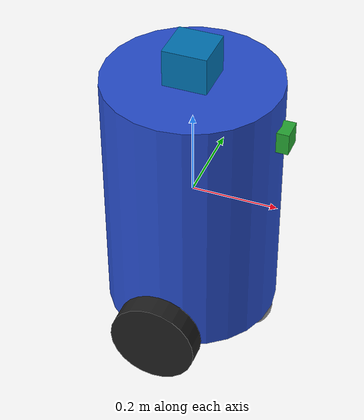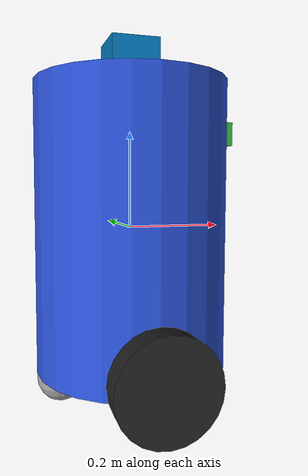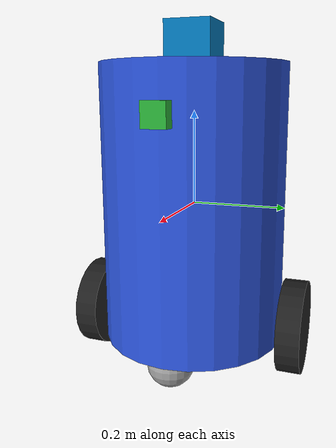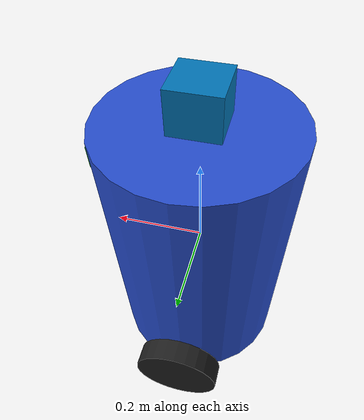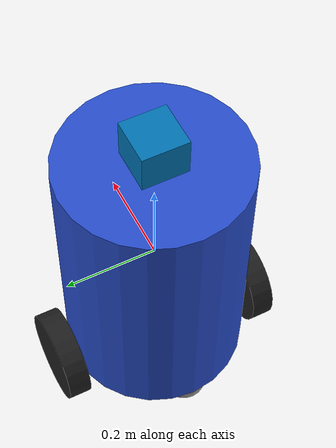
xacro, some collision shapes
<?xml version='1.0'?>

<robot name="udacity_bot" xmlns:xacro="http://www.ros.org/wiki/xacro">

  <!-- source: https://github.com/tu-darmstadt-ros-pkg/hector_models/blob/indigo-devel/hector_xacro_tools/urdf/inertia_tensors.urdf.xacro -->
  <xacro:include filename="$(find udacity_bot)/urdf/inertia_tensors.urdf.xacro" />

  <xacro:include filename="$(find udacity_bot)/urdf/custom_bot.gazebo" />

  <link name="robot_footprint"></link>

  <joint name="robot_footprint_joint" type="fixed">
    <origin xyz="0 0 0" rpy="0 0 0" />
    <parent link="robot_footprint"/>
    <child link="chassis" />
  </joint>

  <joint type="continuous" name="left_wheel_hinge">
    <origin xyz="0 0.23 -0.26" rpy="0 0 0"/>
    <child link="left_wheel"/>
    <parent link="chassis"/>
    <axis xyz="0 1 0" rpy="0 0 0"/>
    <limit effort="10000" velocity="1000"/>
    <joint_properties damping="1.0" friction="1.0"/>
  </joint>

  <joint type="continuous" name="right_wheel_hinge">
    <origin xyz="0 -0.23 -0.26" rpy="0 0 0"/>
    <child link="right_wheel"/>
    <parent link="chassis"/>
    <axis xyz="0 1 0" rpy="0 0 0"/>
    <limit effort="10000" velocity="1000"/>
    <joint_properties damping="1.0" friction="1.0"/>
  </joint>

  <joint type="fixed" name="camera_joint">
    <origin xyz="0.2 0 .2" rpy="0 0 0"/>
    <child link="camera"/>
    <parent link="chassis"/>
    <axis xyz="0 1 0" rpy="0 0 0"/>
    <limit effort="10000" velocity="1000"/>
    <joint_properties damping="1.0" friction="1.0"/>
  </joint>

  <joint type="fixed" name="hokuyo_joint">
    <origin xyz="0 0 0.335" rpy="0 0 0"/>
    <child link="hokuyo"/>
    <parent link="chassis"/>
    <axis xyz="0 1 0" rpy="0 0 0"/>
    <limit effort="10000" velocity="1000"/>
    <joint_properties damping="1.0" friction="1.0"/>
  </joint>

  <joint type="fixed" name="front_caster_joint">
    <origin xyz="0.15 0 -0.31" rpy="0 0 0"/>
    <child link="front_caster"/>
    <parent link="chassis"/>
    <axis xyz="0 1 0" rpy="0 0 0"/>
    <limit effort="10000" velocity="1000"/>
    <joint_properties damping="1.0" friction="1.0"/>
  </joint>

  <joint type="fixed" name="back_caster_joint">
    <origin xyz="-0.15 0 -0.31" rpy="0 0 0"/>
    <child link="back_caster"/>
    <parent link="chassis"/>
    <axis xyz="0 1 0" rpy="0 0 0"/>
    <limit effort="10000" velocity="1000"/>
    <joint_properties damping="1.0" friction="1.0"/>
  </joint>

  <link name='left_wheel'>
    <inertial>
      <mass value="5.0"/>
      <origin xyz="0.0 0 0" rpy=" 0 1.5707 1.5707"/>
      <inertia
          ixx="0.1" ixy="0" ixz="0"
          iyy="0.1" iyz="0"
          izz="0.1"
      />
    </inertial>

    <collision name='left_wheel_collision'>
      <origin xyz="0 0 0" rpy=" 0 1.5707 1.5707"/>
      <geometry>
        <cylinder length="0.05" radius="0.1"/>
      </geometry>
    </collision>

    <visual name='left_wheel_visual'>
      <origin xyz="0 0 0" rpy=" 0 1.5707 1.5707"/>
      <geometry>
        <cylinder length="0.05" radius="0.1"/>
      </geometry>
    </visual>
  </link>

  <link name='right_wheel'>
    <inertial>
      <mass value="5.0"/>
      <origin xyz="0.0 0 0" rpy=" 0 1.5707 1.5707"/>
      <inertia
          ixx="0.1" ixy="0" ixz="0"
          iyy="0.1" iyz="0"
          izz="0.1"
      />
    </inertial>

    <collision name='right_wheel_collision'>
      <origin xyz="0 0 0" rpy=" 0 1.5707 1.5707"/>
      <geometry>
        <cylinder length="0.05" radius="0.1"/>
      </geometry>
    </collision>

    <visual name='right_wheel_visual'>
      <origin xyz="0 0 0" rpy=" 0 1.5707 1.5707"/>
      <geometry>
        <cylinder length="0.05" radius="0.1"/>
      </geometry>
    </visual>
  </link>

  <link name='camera'>
      <xacro:inertial_cuboid_with_pose mass=".1" x_length="0.05" y_length="0.05" z_length="0.05" >
        <origin xyz="0.0 0 0" rpy=" 0 0 0"/>
      </xacro:inertial_cuboid_with_pose>

    <collision name='camera_collision'>
      <origin xyz="0 0 0" rpy=" 0 0 0"/>
      <geometry>
        <box size="0.05 0.05 0.05"/>
      </geometry>
    </collision>

    <visual name='camera_visual'>
      <origin xyz="0 0 0" rpy=" 0 0 0"/>
      <geometry>
        <box size="0.05 0.05 0.05"/>
      </geometry>
    </visual>
  </link>

  <link name='hokuyo'>
    <inertial>
      <mass value=".1"/>
      <origin xyz="0.0 0 0" rpy=" 0 0 0"/>
      <inertia
          ixx="1e-6" ixy="0" ixz="0"
          iyy="1e-6" iyz="0"
          izz="1e-6"
      />
    </inertial>

    <collision name='hokuyo_collision'>
      <origin xyz="0 0 0" rpy=" 0 0 0"/>
      <geometry>
        <box size=".1 .1 .1"/>
      </geometry>
    </collision>

    <visual name='hokuyo_visual'>
      <origin xyz="0 0 0" rpy=" 0 0 0"/>
      <geometry>
        <mesh filename="package://udacity_bot/meshes/hokuyo.dae"/>
      </geometry>
    </visual>
  </link>

  <link name='chassis'>
    <pose>0 0 0.1 0 0 0</pose>
    <xacro:inertial_cylinder_with_pose mass="30.0" radius="0.2" z_length="0.6" >
      <origin xyz="0.0 0 0" rpy=" 0 0 0"/>
    </xacro:inertial_cylinder_with_pose>

    <collision name='collision'>
      <origin xyz="0 0 0" rpy=" 0 0 0"/>
      <geometry>
        <cylinder length="0.6" radius="0.2"/>
      </geometry>
    </collision>

    <visual name='chassis_visual'>
      <origin xyz="0 0 0" rpy=" 0 0 0"/>
      <geometry>
        <cylinder length="0.6" radius="0.2"/>
      </geometry>
    </visual>
  </link>

  <link name='front_caster'>
    <collision name='front_caster_collision'>
      <origin xyz="0 0 0" rpy=" 0 0 0"/>
      <geometry>
        <sphere radius="0.05"/>
      </geometry>
      <surface>
        <friction>
          <ode>
            <mu>0</mu>
            <mu2>0</mu2>
            <slip1>1.0</slip1>
            <slip2>1.0</slip2>
          </ode>
        </friction>
      </surface>
    </collision>

    <visual name='front_caster_visual'>
      <origin xyz="0 0 0" rpy=" 0 0 0"/>
      <geometry>
        <sphere radius="0.05"/>
      </geometry>
    </visual>

  </link>

  <link name='back_caster'>
      <collision name='back_caster_collision'>
      <origin xyz="0 0 0" rpy=" 0 0 0"/>
      <geometry>
        <sphere radius="0.05"/>
      </geometry>
      <surface>
        <friction>
          <ode>
            <mu>0</mu>
            <mu2>0</mu2>
            <slip1>1.0</slip1>
            <slip2>1.0</slip2>
          </ode>
        </friction>
      </surface>
    </collision>

    <visual name='back_caster_visual'>
      <origin xyz="0 0 0" rpy=" 0 0 0"/>
      <geometry>
        <sphere radius="0.05"/>
      </geometry>
    </visual>
  </link>

</robot>

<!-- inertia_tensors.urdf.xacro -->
<robot xmlns:xacro="http://www.ros.org/wiki/xacro">

  <xacro:macro name="inertial_cuboid" params="mass x_length y_length z_length">
    <inertial>
      <mass value="${mass}" />
      <origin xyz="0 0 0" />
      <inertia ixx="${(1/12) * mass * (y_length*y_length + z_length*z_length)}" ixy="0.0" ixz="0.0"
               iyy="${(1/12) * mass * (x_length*x_length + z_length*z_length)}" iyz="0.0"
               izz="${(1/12) * mass * (x_length*x_length + y_length*y_length)}" />
    </inertial>
  </xacro:macro>

  <xacro:macro name="inertial_cuboid_with_pose" params="mass x_length y_length z_length *origin">
    <inertial>
      <xacro:insert_block name="origin"/>
      <mass value="${mass}" />
      <inertia ixx="${(1/12) * mass * (y_length*y_length + z_length*z_length)}" ixy="0.0" ixz="0.0"
               iyy="${(1/12) * mass * (x_length*x_length + z_length*z_length)}" iyz="0.0"
               izz="${(1/12) * mass * (x_length*x_length + y_length*y_length)}" />
    </inertial>
  </xacro:macro>

  <xacro:macro name="inertial_sphere" params="mass diameter">
    <inertial>
      <mass value="${mass}" />
      <origin xyz="0 0 0" />
      <inertia ixx="${(2/5) * mass * ( (diameter*0.5) * (diameter*0.5) )}" ixy="0.0" ixz="0.0"
               iyy="${(2/5) * mass * ( (diameter*0.5) * (diameter*0.5) )}" iyz="0.0"
               izz="${(2/5) * mass * ( (diameter*0.5) * (diameter*0.5) )}" />
    </inertial>
  </xacro:macro>

  <xacro:macro name="inertial_sphere_with_pose" params="mass diameter *origin">
    <inertial>
      <xacro:insert_block name="origin"/>
      <mass value="${mass}" />
      <inertia ixx="${(2/5) * mass * ( (diameter*0.5) * (diameter*0.5) )}" ixy="0.0" ixz="0.0"
               iyy="${(2/5) * mass * ( (diameter*0.5) * (diameter*0.5) )}" iyz="0.0"
               izz="${(2/5) * mass * ( (diameter*0.5) * (diameter*0.5) )}" />
    </inertial>
  </xacro:macro>

  <xacro:macro name="inertial_cylinder_with_pose" params="mass radius z_length *origin">
    <inertial>
      <xacro:insert_block name="origin"/>
      <mass value="${mass}" />
      <inertia ixx="${(1/12) * mass * ( 3 * ( radius * radius ) + (z_length * z_length) )}" ixy="0.0" ixz="0.0"
               iyy="${(1/12) * mass * ( 3 * ( radius * radius ) + (z_length * z_length) )}" iyz="0.0"
               izz="${(1/2) * mass * ( radius * radius )}" />
    </inertial>
  </xacro:macro>
</robot>
